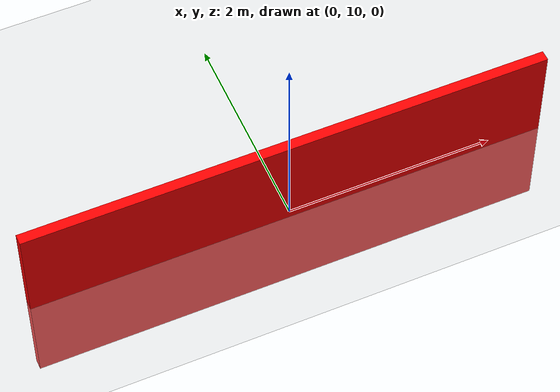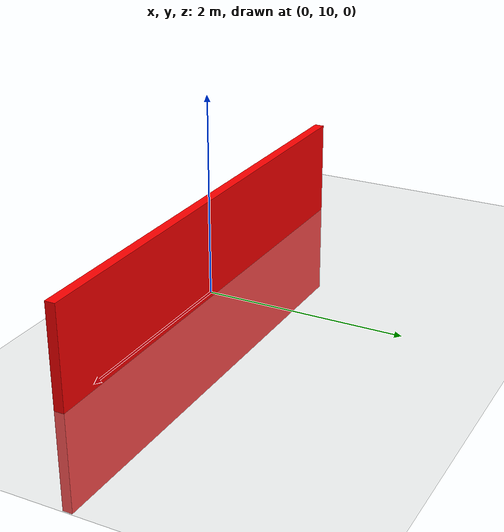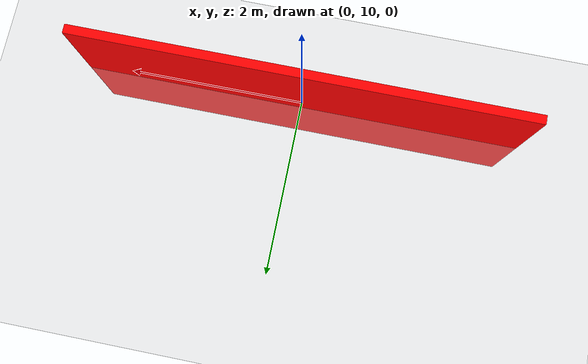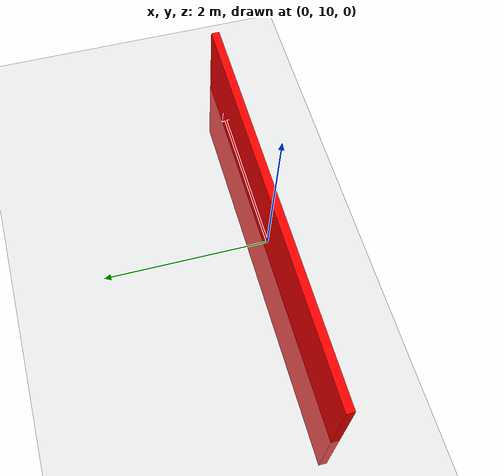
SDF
<?xml version="1.0" ?>
<sdf version="1.6">
  <world name="me_world">

    <!-- Ground and lighting -->
    <include>
      <uri>model://ground_plane</uri>
    </include>

    <include>
      <uri>model://sun</uri>
    </include>

    <!-- Wall in front of robot (0.5m tall, 1m wide, 0.05m thick) -->
    <model name="wall">
      <static>true</static>
      <link name="link">
        <pose>0 10 0 0 0 0</pose>
        <collision name="collision">
          <geometry>
            <box>
              <size>5.0 0.1 2.0</size>
            </box>
          </geometry>
        </collision>
        <visual name="visual">
          <geometry>
            <box>
              <size>5.0 0.1 2.0</size>
            </box>
          </geometry>
          <material>
            <ambient>1 0 0 1</ambient>
            <diffuse>1 0 0 1</diffuse>
          </material>
        </visual>
      </link>
    </model>

  </world>
</sdf>
